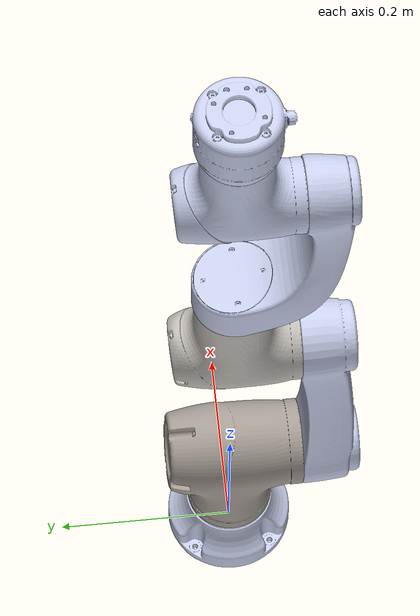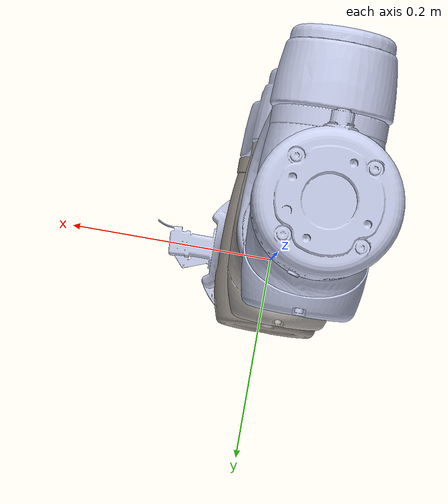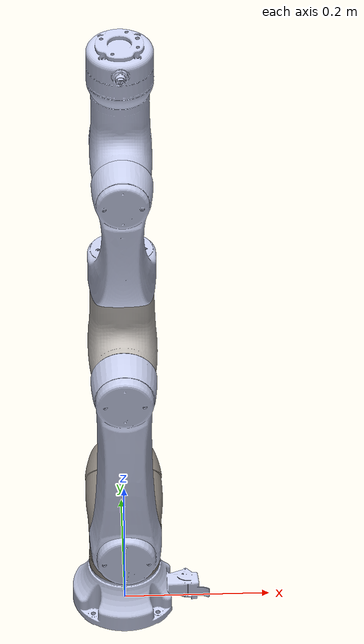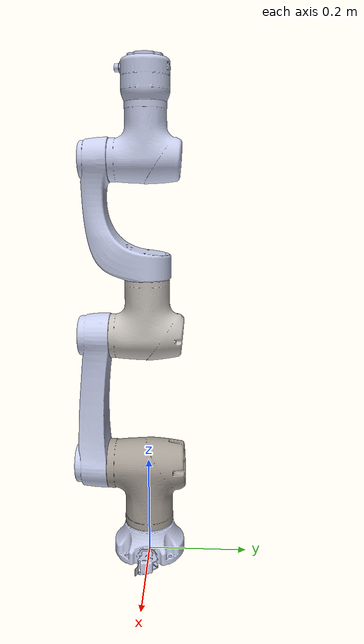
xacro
<robot
  name="MyCo-3-0.59" xmlns:xacro="http://www.ros.org/wiki/xacro">

  <xacro:include filename="$(find myco_description)/urdf/materials.xacro" />

  <xacro:include filename="$(find myco_description)/urdf/myco_robot.gazebo" />

  <xacro:include filename="$(find myco_description)/urdf/myco_transmission.xacro" />

  <xacro:property name="PI" value="3.1415926535897931"/>

  <xacro:property name="density" value="3.09"/>

  <link name="world"/>

  <joint name="world_base" type="fixed">
    <origin
      xyz="0 0 0"
      rpy="0 0 -1.57080" />
    <parent
      link="world" />
    <child
      link="myco_base_link" />
  </joint>

  <link name="myco_base_link"/>

  <joint name="myco_base_joint" type="fixed">
    <origin
      xyz="0 0 0"
      rpy="0 0 ${PI/2}" />
    <parent
      link="myco_base_link" />
    <child
      link="myco_base" />
  </joint>

 <link
    name="myco_base">
    <inertial>
      <origin
        xyz="-0.00027695983850127 7.63096615894048E-06 0.0268778601548512"
        rpy="0 0 0" />
      <mass
        value="0.7245785482549" />
      <inertia
        ixx="0.000970150109671104"
        ixy="3.6255400122117E-08"
        ixz="-1.47235460346171E-05"
        iyy="0.000882560393454694"
        iyz="-5.96416764696243E-08"
        izz="0.00145842795825581" />
    </inertial>
    <visual>
      <origin
        xyz="0 0 0"
        rpy="0 0 0" />
      <geometry>
        <mesh
          filename="file://$(find myco_description)/meshes/MyCo-3-0.59/myco_base.STL" />
      </geometry>
      <material
        name="">
        <color
          rgba="0.792156862745098 0.819607843137255 0.929411764705882 1" />
      </material>
    </visual>
    <collision>
      <origin
        xyz="0 0 0"
        rpy="0 0 0" />
      <geometry>
        <mesh
          filename="file://$(find myco_description)/meshes/MyCo-3-0.59/myco_base.STL" />
      </geometry>
    </collision>
  </link>
  <link
    name="myco_link1">
    <inertial>
      <origin
        xyz="-8.91539579847577E-06 -0.00563249327792538 -0.0303126440472883"
        rpy="0 0 0" />
      <mass
        value="1.92522085347325" />
      <inertia
        ixx="0.00587219615466828"
        ixy="-7.37315625439862E-07"
        ixz="-2.79907745035039E-07"
        iyy="0.00517271060907105"
        iyz="0.0011236969138874"
        izz="0.00316959851533252" />
    </inertial>
    <visual>
      <origin
        xyz="0 0 0"
        rpy="0 0 0" />
      <geometry>
        <mesh
          filename="file://$(find myco_description)/meshes/MyCo-3-0.59/myco_link1.STL" />
      </geometry>
      <material
        name="">
        <color
          rgba="0.650980392156863 0.619607843137255 0.584313725490196 1" />
      </material>
    </visual>
    <collision>
      <origin
        xyz="0 0 0"
        rpy="0 0 0" />
      <geometry>
        <mesh
          filename="file://$(find myco_description)/meshes/MyCo-3-0.59/myco_link1.STL" />
      </geometry>
    </collision>
  </link>
  <joint
    name="myco_joint1"
    type="revolute">
    <origin
      xyz="0 0 0.1925"
      rpy="0 0 0" />
    <parent
      link="myco_base" />
    <child
      link="myco_link1" />
    <axis
      xyz="0 0 1" />
    <limit
      lower="-6.283"
      upper="6.283"
      effort="200"
      velocity="1.57" />
  </joint>
  <link
    name="myco_link2">
    <inertial>
      <origin
        xyz="-1.23403972475124E-05 0.122745297432378 0.107454785665814"
        rpy="0 0 0" />
      <mass
        value="1.32916357022771" />
      <inertia
        ixx="0.0143234899021343"
        ixy="2.46462340307109E-06"
        ixz="-1.75693312623305E-07"
        iyy="0.000965876134991096"
        iyz="0.000630957725186578"
        izz="0.0145986007700288" />
    </inertial>
    <visual>
      <origin
        xyz="0 0 0"
        rpy="0 0 0" />
      <geometry>
        <mesh
          filename="file://$(find myco_description)/meshes/MyCo-3-0.59/myco_link2.STL" />
      </geometry>
      <material
        name="">
        <color
          rgba="0.792156862745098 0.819607843137255 0.933333333333333 1" />
      </material>
    </visual>
    <collision>
      <origin
        xyz="0 0 0"
        rpy="0 0 0" />
      <geometry>
        <mesh
          filename="file://$(find myco_description)/meshes/MyCo-3-0.59/myco_link2.STL" />
      </geometry>
    </collision>
  </link>
  <joint
    name="myco_joint2"
    type="revolute">
    <origin
      xyz="0 0 0"
      rpy="1.5708 0 0" />
    <parent
      link="myco_link1" />
    <child
      link="myco_link2" />
    <axis
      xyz="0 0 1" />
    <limit
      lower="-2.356"
      upper="2.356"
      effort="200"
      velocity="1.57" />
  </joint>
  <link
    name="myco_link3">
    <inertial>
      <origin
        xyz="0.0273503495467048 5.48033723722187E-06 -0.00487896906940542"
        rpy="0 0 0" />
      <mass
        value="1.35242975944115" />
      <inertia
        ixx="0.00178064753609302"
        ixy="-2.20907651848147E-07"
        ixz="-0.000626857689812886"
        iyy="0.00332334728865562"
        iyz="-5.56828856646333E-07"
        izz="0.00287611488669265" />
    </inertial>
    <visual>
      <origin
        xyz="0 0 0"
        rpy="0 0 0" />
      <geometry>
        <mesh
          filename="file://$(find myco_description)/meshes/MyCo-3-0.59/myco_link3.STL" />
      </geometry>
      <material
        name="">
        <color
          rgba="0.772549019607843 0.752941176470588 0.733333333333333 1" />
      </material>
    </visual>
    <collision>
      <origin
        xyz="0 0 0"
        rpy="0 0 0" />
      <geometry>
        <mesh
          filename="file://$(find myco_description)/meshes/MyCo-3-0.59/myco_link3.STL" />
      </geometry>
    </collision>
  </link>
  <joint
    name="myco_joint3"
    type="revolute">
    <origin
      xyz="0 0.266 0"
      rpy="3.1416 0 1.5708" />
    <parent
      link="myco_link2" />
    <child
      link="myco_link3" />
    <axis
      xyz="0 0 1" />
    <limit
      lower="-2.618"
      upper="2.618"
      effort="200"
      velocity="1.57" />
  </joint>
  <link
    name="myco_link4">
    <inertial>
      <origin
        xyz="9.09337261467621E-07 -0.0599929358061034 0.203743684852779"
        rpy="0 0 0" />
      <mass
        value="1.01622718378241" />
      <inertia
        ixx="0.00719645653258954"
        ixy="1.63948762478838E-08"
        ixz="7.94617347930607E-09"
        iyy="0.00589240676079192"
        iyz="0.00214741597243281"
        izz="0.00220714232180134" />
    </inertial>
    <visual>
      <origin
        xyz="0 0 0"
        rpy="0 0 0" />
      <geometry>
        <mesh
          filename="file://$(find myco_description)/meshes/MyCo-3-0.59/myco_link4.STL" />
      </geometry>
      <material
        name="">
        <color
          rgba="0.792156862745098 0.819607843137255 0.933333333333333 1" />
      </material>
    </visual>
    <collision>
      <origin
        xyz="0 0 0"
        rpy="0 0 0" />
      <geometry>
        <mesh
          filename="file://$(find myco_description)/meshes/MyCo-3-0.59/myco_link4.STL" />
      </geometry>
    </collision>
  </link>
  <joint
    name="myco_joint4"
    type="revolute">
    <origin
      xyz="0 0 0"
      rpy="1.5708 0 1.5708" />
    <parent
      link="myco_link3" />
    <child
      link="myco_link4" />
    <axis
      xyz="0 0 1" />
    <limit
      lower="-6.283"
      upper="6.283"
      effort="104"
      velocity="1.57" />
  </joint>
  <link
    name="myco_link5">
    <inertial>
      <origin
        xyz="-4.65990510061934E-07 -0.0225167615518929 -0.00429956563234533"
        rpy="0 0 0" />
      <mass
        value="0.990243418796126" />
      <inertia
        ixx="0.00193102719905894"
        ixy="3.96600153117993E-08"
        ixz="9.44649960529068E-08"
        iyy="0.00109724731750724"
        iyz="0.00037478584640254"
        izz="0.00160806944895717" />
    </inertial>
    <visual>
      <origin
        xyz="0 0 0"
        rpy="0 0 0" />
      <geometry>
        <mesh
          filename="file://$(find myco_description)/meshes/MyCo-3-0.59/myco_link5.STL" />
      </geometry>
      <material
        name="">
        <color
          rgba="0.792156862745098 0.819607843137255 0.933333333333333 1" />
      </material>
    </visual>
    <collision>
      <origin
        xyz="0 0 0"
        rpy="0 0 0" />
      <geometry>
        <mesh
          filename="file://$(find myco_description)/meshes/MyCo-3-0.59/myco_link5.STL" />
      </geometry>
    </collision>
  </link>
  <joint
    name="myco_joint5"
    type="revolute">
    <origin
      xyz="0 0 0.324"
      rpy="-1.5708 0 0" />
    <parent
      link="myco_link4" />
    <child
      link="myco_link5" />
    <axis
      xyz="0 0 1" />
    <limit
      lower="-2.565"
      upper="2.565"
      effort="34"
      velocity="1.57" />
  </joint>
  <link
    name="myco_link6">
    <inertial>
      <origin
        xyz="-6.05886244690852E-07 -0.000147343219411144 0.137754332176962"
        rpy="0 0 0" />
      <mass
        value="0.388090511103691" />
      <inertia
        ixx="0.000323304127961029"
        ixy="-1.16776769737677E-07"
        ixz="9.14999120612086E-08"
        iyy="0.000320919946003903"
        iyz="9.26097135186965E-07"
        izz="0.000361389016541944" />
    </inertial>
    <visual>
      <origin
        xyz="0 0 0"
        rpy="0 0 0" />
      <geometry>
        <mesh
          filename="file://$(find myco_description)/meshes/MyCo-3-0.59/myco_link6.STL" />
      </geometry>
      <material
        name="">
        <color
          rgba="0.792156862745098 0.819607843137255 0.933333333333333 1" />
      </material>
    </visual>
    <collision>
      <origin
        xyz="0 0 0"
        rpy="0 0 0" />
      <geometry>
        <mesh
          filename="file://$(find myco_description)/meshes/MyCo-3-0.59/myco_link6.STL" />
      </geometry>
    </collision>
  </link>
  <joint
    name="myco_joint6"
    type="revolute">
    <origin
      xyz="0 0 0"
      rpy="1.5708 0 0" />
    <parent
      link="myco_link5" />
    <child
      link="myco_link6" />
    <axis
      xyz="0 0 1" />
    <limit
      lower="-6.283"
      upper="6.283"
      effort="34"
      velocity="1.57" />
  </joint>
  <link
    name="myco_end_link">
  </link>
  <joint
    name="myco_end_joint"
    type="fixed">
    <origin
      xyz="0 0 0.175"
      rpy="0 0 0" />
    <parent
      link="myco_link6" />
    <child
      link="myco_end_link" />
    <axis
      xyz="0 0 0" />
  </joint>

</robot>
